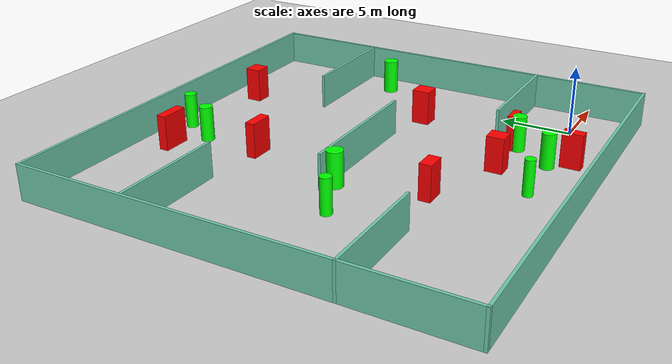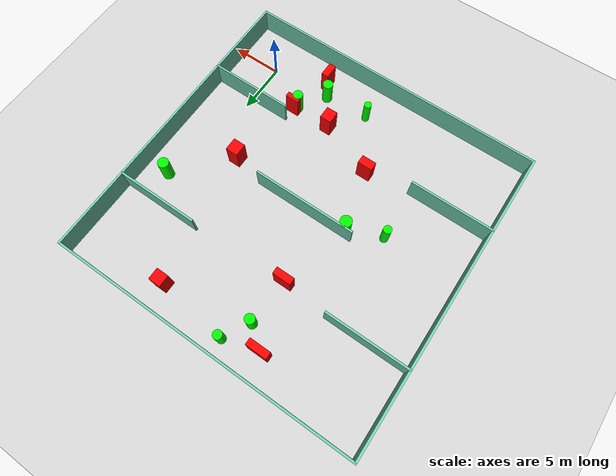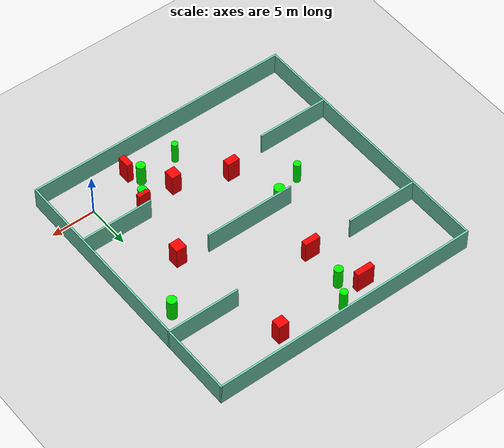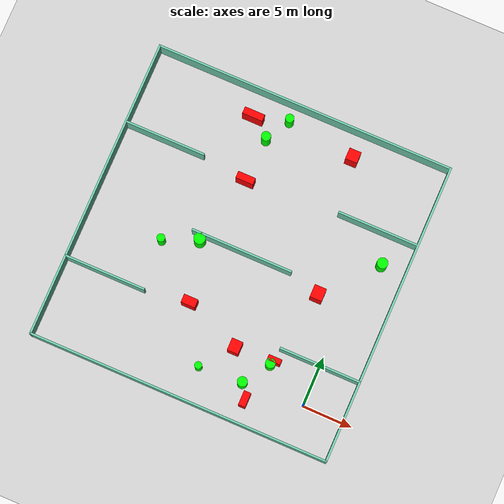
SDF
<sdf version="1.7">
 <world name="default">
  <light name="sun" type="directional">
   <pose>0 0 10 0 -0 0</pose>
   <diffuse>0.8 0.8 0.8 1</diffuse>
   <specular>0.2 0.2 0.2 1</specular>
   <attenuation>
    <range>1000</range>
    <constant>0.9</constant>
    <linear>0.01</linear>
    <quadratic>0.001</quadratic>
   </attenuation>
   <direction>-0.5 0.1 -0.9</direction>
   <spot><inner_angle>0</inner_angle><outer_angle>0</outer_angle><falloff>0</falloff></spot>
  </light>
  <model name="ground_plane">
   <static>1</static>
   <link name="link">
    <collision name="collision">
     <geometry><plane><normal>0 0 1</normal><size>100 100</size></plane></geometry>
     <surface>
      <contact><collide_bitmask>65535</collide_bitmask></contact>
      <friction><ode><mu>100</mu><mu2>50</mu2></ode></friction>
     </surface>
    </collision>
    <visual name="visual">
     <cast_shadows>0</cast_shadows>
     <geometry><plane><normal>0 0 1</normal><size>100 100</size></plane></geometry>
     <material>
      <script><uri>file://media/materials/scripts/gazebo.material</uri><name>Gazebo/Grey</name></script>
     </material>
    </visual>
   </link>
  </model>
  <gravity>0 0 -9.8</gravity>
  <magnetic_field>6e-06 2.3e-05 -4.2e-05</magnetic_field>
  <atmosphere type="adiabatic"/>
  <physics type="ode">
   <max_step_size>0.001</max_step_size>
   <real_time_factor>1</real_time_factor>
   <real_time_update_rate>1000</real_time_update_rate>
  </physics>
  <scene><ambient>0.4 0.4 0.4 1</ambient><background>0.7 0.7 0.7 1</background><shadows>1</shadows></scene>
  <spherical_coordinates>
   <surface_model>EARTH_WGS84</surface_model>
   <latitude_deg>0</latitude_deg>
   <longitude_deg>0</longitude_deg>
   <elevation>0</elevation>
   <heading_deg>0</heading_deg>
  </spherical_coordinates>
  <model name="my_base_walls">
   <link name="Wall_10">
    <collision name="Wall_10_Collision">
     <geometry><box><size>8.2 0.2 2.5</size></box></geometry>
     <pose>0 0 1.25 0 -0 0</pose>
    </collision>
    <visual name="Wall_10_Visual">
     <pose>0 0 1.25 0 -0 0</pose>
     <geometry><box><size>8.2 0.2 2.5</size></box></geometry>
     <material>
      <script><uri>file://media/materials/scripts/gazebo.material</uri><name>Gazebo/Grey</name></script>
      <ambient>0.435294 0.796078 0.67451 1</ambient>
     </material>
     <meta><layer>0</layer></meta>
    </visual>
    <pose>-11 -7 0 0 -0 0</pose>
   </link>
   <link name="Wall_12">
    <collision name="Wall_12_Collision">
     <geometry><box><size>8.2 0.2 2.5</size></box></geometry>
     <pose>0 0 1.25 0 -0 0</pose>
    </collision>
    <visual name="Wall_12_Visual">
     <pose>0 0 1.25 0 -0 0</pose>
     <geometry><box><size>8.2 0.2 2.5</size></box></geometry>
     <material>
      <script><uri>file://media/materials/scripts/gazebo.material</uri><name>Gazebo/Grey</name></script>
      <ambient>0.435294 0.796078 0.67451 1</ambient>
     </material>
     <meta><layer>0</layer></meta>
    </visual>
    <pose>-11 7 0 0 -0 0</pose>
   </link>
   <link name="Wall_14">
    <collision name="Wall_14_Collision">
     <geometry><box><size>8.2 0.2 2.5</size></box></geometry>
     <pose>0 0 1.25 0 -0 0</pose>
    </collision>
    <visual name="Wall_14_Visual">
     <pose>0 0 1.25 0 -0 0</pose>
     <geometry><box><size>8.2 0.2 2.5</size></box></geometry>
     <material>
      <script><uri>file://media/materials/scripts/gazebo.material</uri><name>Gazebo/Grey</name></script>
      <ambient>0.435294 0.796078 0.67451 1</ambient>
     </material>
     <meta><layer>0</layer></meta>
    </visual>
    <pose>11 7 0 0 -0 3.14159</pose>
   </link>
   <link name="Wall_16">
    <collision name="Wall_16_Collision">
     <geometry><box><size>10.2 0.2 2.5</size></box></geometry>
     <pose>0 0 1.25 0 -0 0</pose>
    </collision>
    <visual name="Wall_16_Visual">
     <pose>0 0 1.25 0 -0 0</pose>
     <geometry><box><size>10.2 0.2 2.5</size></box></geometry>
     <material>
      <script><uri>file://media/materials/scripts/gazebo.material</uri><name>Gazebo/Grey</name></script>
      <ambient>0.435294 0.796078 0.67451 1</ambient>
     </material>
     <meta><layer>0</layer></meta>
    </visual>
    <pose>0 0 0 0 -0 3.14159</pose>
   </link>
   <link name="Wall_2">
    <collision name="Wall_2_Collision">
     <geometry><box><size>30.2 0.2 2.5</size></box></geometry>
     <pose>0 0 1.25 0 -0 0</pose>
    </collision>
    <visual name="Wall_2_Visual">
     <pose>0 0 1.25 0 -0 0</pose>
     <geometry><box><size>30.2 0.2 2.5</size></box></geometry>
     <material>
      <script><uri>file://media/materials/scripts/gazebo.material</uri><name>Gazebo/Grey</name></script>
      <ambient>0.435294 0.796078 0.67451 1</ambient>
     </material>
     <meta><layer>0</layer></meta>
    </visual>
    <pose>0 -15 0 0 -0 3.14159</pose>
   </link>
   <link name="Wall_3">
    <collision name="Wall_3_Collision">
     <geometry><box><size>30.2 0.2 2.5</size></box></geometry>
     <pose>0 0 1.25 0 -0 0</pose>
    </collision>
    <visual name="Wall_3_Visual">
     <pose>0 0 1.25 0 -0 0</pose>
     <geometry><box><size>30.2 0.2 2.5</size></box></geometry>
     <material>
      <script><uri>file://media/materials/scripts/gazebo.material</uri><name>Gazebo/Grey</name></script>
      <ambient>0.435294 0.796078 0.67451 1</ambient>
     </material>
     <meta><layer>0</layer></meta>
    </visual>
    <pose>-15 0 0 0 -0 1.5708</pose>
   </link>
   <link name="Wall_4">
    <collision name="Wall_4_Collision">
     <geometry><box><size>30.2 0.2 2.5</size></box></geometry>
     <pose>0 0 1.25 0 -0 0</pose>
    </collision>
    <visual name="Wall_4_Visual">
     <pose>0 0 1.25 0 -0 0</pose>
     <geometry><box><size>30.2 0.2 2.5</size></box></geometry>
     <material>
      <script><uri>file://media/materials/scripts/gazebo.material</uri><name>Gazebo/Grey</name></script>
      <ambient>0.435294 0.796078 0.67451 1</ambient>
     </material>
     <meta><layer>0</layer></meta>
    </visual>
    <pose>0 15 0 0 -0 0</pose>
   </link>
   <link name="Wall_6">
    <collision name="Wall_6_Collision">
     <geometry><box><size>30.2 0.2 2.5</size></box></geometry>
     <pose>0 0 1.25 0 -0 0</pose>
    </collision>
    <visual name="Wall_6_Visual">
     <pose>0 0 1.25 0 -0 0</pose>
     <geometry><box><size>30.2 0.2 2.5</size></box></geometry>
     <material>
      <script><uri>file://media/materials/scripts/gazebo.material</uri><name>Gazebo/Grey</name></script>
      <ambient>0.435294 0.796078 0.67451 1</ambient>
     </material>
     <meta><layer>0</layer></meta>
    </visual>
    <pose>15 0 0 0 -0 1.5708</pose>
   </link>
   <link name="Wall_8">
    <collision name="Wall_8_Collision">
     <geometry><box><size>8.2 0.2 2.5</size></box></geometry>
     <pose>0 0 1.25 0 -0 0</pose>
    </collision>
    <visual name="Wall_8_Visual">
     <pose>0 0 1.25 0 -0 0</pose>
     <geometry><box><size>8.2 0.2 2.5</size></box></geometry>
     <material>
      <script><uri>file://media/materials/scripts/gazebo.material</uri><name>Gazebo/Grey</name></script>
      <ambient>0.435294 0.796078 0.67451 1</ambient>
     </material>
     <meta><layer>0</layer></meta>
    </visual>
    <pose>11 -7 0 0 -0 3.14159</pose>
   </link>
   <static>1</static>
   <pose>-11 11 0 0 -0 0</pose>
  </model>
  <model name="cylinder1">
   <static>1</static>
   <link name="link">
    <inertial>
     <mass>1</mass>
     <inertia><ixx>0.5</ixx><ixy>0</ixy><ixz>0</ixz><iyy>0.5</iyy><iyz>0</iyz><izz>1</izz></inertia>
    </inertial>
    <collision name="collision">
     <geometry><cylinder><radius>0.5347335615044808</radius><length>2.5</length></cylinder></geometry>
    </collision>
    <visual name="visual">
     <geometry><cylinder><radius>0.5347335615044808</radius><length>2.5</length></cylinder></geometry>
     <material>
      <ambient>0 1 0 1</ambient>
      <diffuse>0 1 0 1</diffuse>
      <specular>0.1 0.1 0.1 1</specular>
      <emissive>0 0 0 0</emissive>
     </material>
    </visual>
   </link>
   <pose>1.5932847744041005 15.145398112041104 1.25 0 0 0</pose>
  </model>
  <model name="cylinder2">
   <static>1</static>
   <link name="link">
    <inertial>
     <mass>1</mass>
     <inertia><ixx>0.5</ixx><ixy>0</ixy><ixz>0</ixz><iyy>0.5</iyy><iyz>0</iyz><izz>1</izz></inertia>
    </inertial>
    <collision name="collision">
     <geometry><cylinder><radius>0.42606518721389397</radius><length>2.5</length></cylinder></geometry>
    </collision>
    <visual name="visual">
     <geometry><cylinder><radius>0.42606518721389397</radius><length>2.5</length></cylinder></geometry>
     <material>
      <ambient>0 1 0 1</ambient>
      <diffuse>0 1 0 1</diffuse>
      <specular>0.1 0.1 0.1 1</specular>
      <emissive>0 0 0 0</emissive>
     </material>
    </visual>
   </link>
   <pose>-11.862234232677428 24.429235050382648 1.25 0 0 0</pose>
  </model>
  <model name="cylinder3">
   <static>1</static>
   <link name="link">
    <inertial>
     <mass>1</mass>
     <inertia><ixx>0.5</ixx><ixy>0</ixy><ixz>0</ixz><iyy>0.5</iyy><iyz>0</iyz><izz>1</izz></inertia>
    </inertial>
    <collision name="collision">
     <geometry><cylinder><radius>0.4827527629859151</radius><length>2.5</length></cylinder></geometry>
    </collision>
    <visual name="visual">
     <geometry><cylinder><radius>0.4827527629859151</radius><length>2.5</length></cylinder></geometry>
     <material>
      <ambient>0 1 0 1</ambient>
      <diffuse>0 1 0 1</diffuse>
      <specular>0.1 0.1 0.1 1</specular>
      <emissive>0 0 0 0</emissive>
     </material>
    </visual>
   </link>
   <pose>-4.335424940915871 2.3113174151530806 1.25 0 0 0</pose>
  </model>
  <model name="cylinder4">
   <static>1</static>
   <link name="link">
    <inertial>
     <mass>1</mass>
     <inertia><ixx>0.5</ixx><ixy>0</ixy><ixz>0</ixz><iyy>0.5</iyy><iyz>0</iyz><izz>1</izz></inertia>
    </inertial>
    <collision name="collision">
     <geometry><cylinder><radius>0.3980304286943517</radius><length>2.5</length></cylinder></geometry>
    </collision>
    <visual name="visual">
     <geometry><cylinder><radius>0.3980304286943517</radius><length>2.5</length></cylinder></geometry>
     <material>
      <ambient>0 1 0 1</ambient>
      <diffuse>0 1 0 1</diffuse>
      <specular>0.1 0.1 0.1 1</specular>
      <emissive>0 0 0 0</emissive>
     </material>
    </visual>
   </link>
   <pose>-18.46414586757365 9.08708855314343 1.25 0 0 0</pose>
  </model>
  <model name="cylinder5">
   <static>1</static>
   <link name="link">
    <inertial>
     <mass>1</mass>
     <inertia><ixx>0.5</ixx><ixy>0</ixy><ixz>0</ixz><iyy>0.5</iyy><iyz>0</iyz><izz>1</izz></inertia>
    </inertial>
    <collision name="collision">
     <geometry><cylinder><radius>0.4720280452894965</radius><length>2.5</length></cylinder></geometry>
    </collision>
    <visual name="visual">
     <geometry><cylinder><radius>0.4720280452894965</radius><length>2.5</length></cylinder></geometry>
     <material>
      <ambient>0 1 0 1</ambient>
      <diffuse>0 1 0 1</diffuse>
      <specular>0.1 0.1 0.1 1</specular>
      <emissive>0 0 0 0</emissive>
     </material>
    </visual>
   </link>
   <pose>-13.240546863854389 21.946672028550832 1.25 0 0 0</pose>
  </model>
  <model name="cylinder6">
   <static>1</static>
   <link name="link">
    <inertial>
     <mass>1</mass>
     <inertia><ixx>0.5</ixx><ixy>0</ixy><ixz>0</ixz><iyy>0.5</iyy><iyz>0</iyz><izz>1</izz></inertia>
    </inertial>
    <collision name="collision">
     <geometry><cylinder><radius>0.3585446085248262</radius><length>2.5</length></cylinder></geometry>
    </collision>
    <visual name="visual">
     <geometry><cylinder><radius>0.3585446085248262</radius><length>2.5</length></cylinder></geometry>
     <material>
      <ambient>0 1 0 1</ambient>
      <diffuse>0 1 0 1</diffuse>
      <specular>0.1 0.1 0.1 1</specular>
      <emissive>0 0 0 0</emissive>
     </material>
    </visual>
   </link>
   <pose>-10.429429198334645 -0.5271757994369284 1.25 0 0 0</pose>
  </model>
  <model name="cylinder7">
   <static>1</static>
   <link name="link">
    <inertial>
     <mass>1</mass>
     <inertia><ixx>0.5</ixx><ixy>0</ixy><ixz>0</ixz><iyy>0.5</iyy><iyz>0</iyz><izz>1</izz></inertia>
    </inertial>
    <collision name="collision">
     <geometry><cylinder><radius>0.49259250114610287</radius><length>2.5</length></cylinder></geometry>
    </collision>
    <visual name="visual">
     <geometry><cylinder><radius>0.49259250114610287</radius><length>2.5</length></cylinder></geometry>
     <material>
      <ambient>0 1 0 1</ambient>
      <diffuse>0 1 0 1</diffuse>
      <specular>0.1 0.1 0.1 1</specular>
      <emissive>0 0 0 0</emissive>
     </material>
    </visual>
   </link>
   <pose>-6.050485190598829 -0.298522644421245 1.25 0 0 0</pose>
  </model>
  <model name="cylinder8">
   <static>1</static>
   <link name="link">
    <inertial>
     <mass>1</mass>
     <inertia><ixx>0.5</ixx><ixy>0</ixy><ixz>0</ixz><iyy>0.5</iyy><iyz>0</iyz><izz>1</izz></inertia>
    </inertial>
    <collision name="collision">
     <geometry><cylinder><radius>0.5664583947986024</radius><length>2.5</length></cylinder></geometry>
    </collision>
    <visual name="visual">
     <geometry><cylinder><radius>0.5664583947986024</radius><length>2.5</length></cylinder></geometry>
     <material>
      <ambient>0 1 0 1</ambient>
      <diffuse>0 1 0 1</diffuse>
      <specular>0.1 0.1 0.1 1</specular>
      <emissive>0 0 0 0</emissive>
     </material>
    </visual>
   </link>
   <pose>-15.099785671443462 10.469262460685393 1.25 0 0 0</pose>
  </model>
  <model name="box1">
   <static>1</static>
   <link name="link">
    <inertial>
     <mass>1</mass>
     <inertia><ixx>0.083</ixx><ixy>0</ixy><ixz>0</ixz><iyy>0.083</iyy><iyz>0</iyz><izz>0.083</izz></inertia>
    </inertial>
    <collision name="collision">
     <geometry><box><size>1.4167211839267306 0.837663834038612 2.5</size></box></geometry>
    </collision>
    <visual name="visual">
     <geometry><box><size>1.4167211839267306 0.837663834038612 2.5</size></box></geometry>
     <material>
      <ambient>1 0 0 1</ambient>
      <diffuse>1 0 0 1</diffuse>
      <specular>0.1 0.1 0.1 1</specular>
      <emissive>0 0 0 0</emissive>
     </material>
    </visual>
    <sensor name="my_contact" type="contact">
     <contact><collision>box_collision</collision><topic>__default_topic__</topic></contact>
    </sensor>
   </link>
   <pose>-13.59583075340737 4.6789726147073445 1.25 0 0 0</pose>
  </model>
  <model name="box2">
   <static>1</static>
   <link name="link">
    <inertial>
     <mass>1</mass>
     <inertia><ixx>0.083</ixx><ixy>0</ixy><ixz>0</ixz><iyy>0.083</iyy><iyz>0</iyz><izz>0.083</izz></inertia>
    </inertial>
    <collision name="collision">
     <geometry><box><size>1.2085547174811269 1.2677722147531674 2.5</size></box></geometry>
    </collision>
    <visual name="visual">
     <geometry><box><size>1.2085547174811269 1.2677722147531674 2.5</size></box></geometry>
     <material>
      <ambient>1 0 0 1</ambient>
      <diffuse>1 0 0 1</diffuse>
      <specular>0.1 0.1 0.1 1</specular>
      <emissive>0 0 0 0</emissive>
     </material>
    </visual>
    <sensor name="my_contact" type="contact">
     <contact><collision>box_collision</collision><topic>__default_topic__</topic></contact>
    </sensor>
   </link>
   <pose>-2.8352240053373734 10.159970054459261 1.25 0 0 0</pose>
  </model>
  <model name="box3">
   <static>1</static>
   <link name="link">
    <inertial>
     <mass>1</mass>
     <inertia><ixx>0.083</ixx><ixy>0</ixy><ixz>0</ixz><iyy>0.083</iyy><iyz>0</iyz><izz>0.083</izz></inertia>
    </inertial>
    <collision name="collision">
     <geometry><box><size>2.0436899809522506 0.6760719076707683 2.5</size></box></geometry>
    </collision>
    <visual name="visual">
     <geometry><box><size>2.0436899809522506 0.6760719076707683 2.5</size></box></geometry>
     <material>
      <ambient>1 0 0 1</ambient>
      <diffuse>1 0 0 1</diffuse>
      <specular>0.1 0.1 0.1 1</specular>
      <emissive>0 0 0 0</emissive>
     </material>
    </visual>
    <sensor name="my_contact" type="contact">
     <contact><collision>box_collision</collision><topic>__default_topic__</topic></contact>
    </sensor>
   </link>
   <pose>-15.168607668420563 23.448362913782436 1.25 0 0 0</pose>
  </model>
  <model name="box4">
   <static>1</static>
   <link name="link">
    <inertial>
     <mass>1</mass>
     <inertia><ixx>0.083</ixx><ixy>0</ixy><ixz>0</ixz><iyy>0.083</iyy><iyz>0</iyz><izz>0.083</izz></inertia>
    </inertial>
    <collision name="collision">
     <geometry><box><size>1.1172569454949577 1.225601763063369 2.5</size></box></geometry>
    </collision>
    <visual name="visual">
     <geometry><box><size>1.1172569454949577 1.225601763063369 2.5</size></box></geometry>
     <material>
      <ambient>1 0 0 1</ambient>
      <diffuse>1 0 0 1</diffuse>
      <specular>0.1 0.1 0.1 1</specular>
      <emissive>0 0 0 0</emissive>
     </material>
    </visual>
    <sensor name="my_contact" type="contact">
     <contact><collision>box_collision</collision><topic>__default_topic__</topic></contact>
    </sensor>
   </link>
   <pose>-7.9924265047627046 2.4798358161496754 1.25 0 0 0</pose>
  </model>
  <model name="box5">
   <static>1</static>
   <link name="link">
    <inertial>
     <mass>1</mass>
     <inertia><ixx>0.083</ixx><ixy>0</ixy><ixz>0</ixz><iyy>0.083</iyy><iyz>0</iyz><izz>0.083</izz></inertia>
    </inertial>
    <collision name="collision">
     <geometry><box><size>1.7700630979444603 0.6771291802357364 2.5</size></box></geometry>
    </collision>
    <visual name="visual">
     <geometry><box><size>1.7700630979444603 0.6771291802357364 2.5</size></box></geometry>
     <material>
      <ambient>1 0 0 1</ambient>
      <diffuse>1 0 0 1</diffuse>
      <specular>0.1 0.1 0.1 1</specular>
      <emissive>0 0 0 0</emissive>
     </material>
    </visual>
    <sensor name="my_contact" type="contact">
     <contact><collision>box_collision</collision><topic>__default_topic__</topic></contact>
    </sensor>
   </link>
   <pose>-13.423486733470954 17.492609648723967 1.25 0 0 0</pose>
  </model>
  <model name="box6">
   <static>1</static>
   <link name="link">
    <inertial>
     <mass>1</mass>
     <inertia><ixx>0.083</ixx><ixy>0</ixy><ixz>0</ixz><iyy>0.083</iyy><iyz>0</iyz><izz>0.083</izz></inertia>
    </inertial>
    <collision name="collision">
     <geometry><box><size>1.3388540882013689 0.5161666006367147 2.5</size></box></geometry>
    </collision>
    <visual name="visual">
     <geometry><box><size>1.3388540882013689 0.5161666006367147 2.5</size></box></geometry>
     <material>
      <ambient>1 0 0 1</ambient>
      <diffuse>1 0 0 1</diffuse>
      <specular>0.1 0.1 0.1 1</specular>
      <emissive>0 0 0 0</emissive>
     </material>
    </visual>
    <sensor name="my_contact" type="contact">
     <contact><collision>box_collision</collision><topic>__default_topic__</topic></contact>
    </sensor>
   </link>
   <pose>-4.120620880016663 2.7872988765106497 1.25 0 0 0</pose>
  </model>
  <model name="box7">
   <static>1</static>
   <link name="link">
    <inertial>
     <mass>1</mass>
     <inertia><ixx>0.083</ixx><ixy>0</ixy><ixz>0</ixz><iyy>0.083</iyy><iyz>0</iyz><izz>0.083</izz></inertia>
    </inertial>
    <collision name="collision">
     <geometry><box><size>1.1949830155100623 1.128842202428126 2.5</size></box></geometry>
    </collision>
    <visual name="visual">
     <geometry><box><size>1.1949830155100623 1.128842202428126 2.5</size></box></geometry>
     <material>
      <ambient>1 0 0 1</ambient>
      <diffuse>1 0 0 1</diffuse>
      <specular>0.1 0.1 0.1 1</specular>
      <emissive>0 0 0 0</emissive>
     </material>
    </visual>
    <sensor name="my_contact" type="contact">
     <contact><collision>box_collision</collision><topic>__default_topic__</topic></contact>
    </sensor>
   </link>
   <pose>-4.9325200372763085 23.508805628790153 1.25 0 0 0</pose>
  </model>
  <model name="box8">
   <static>1</static>
   <link name="link">
    <inertial>
     <mass>1</mass>
     <inertia><ixx>0.083</ixx><ixy>0</ixy><ixz>0</ixz><iyy>0.083</iyy><iyz>0</iyz><izz>0.083</izz></inertia>
    </inertial>
    <collision name="collision">
     <geometry><box><size>0.7017356350521696 1.423232313630741 2.5</size></box></geometry>
    </collision>
    <visual name="visual">
     <geometry><box><size>0.7017356350521696 1.423232313630741 2.5</size></box></geometry>
     <material>
      <ambient>1 0 0 1</ambient>
      <diffuse>1 0 0 1</diffuse>
      <specular>0.1 0.1 0.1 1</specular>
      <emissive>0 0 0 0</emissive>
     </material>
    </visual>
    <sensor name="my_contact" type="contact">
     <contact><collision>box_collision</collision><topic>__default_topic__</topic></contact>
    </sensor>
   </link>
   <pose>-5.218957718799164 -1.680632505608136 1.25 0 0 0</pose>
  </model>
 </world>
</sdf>
